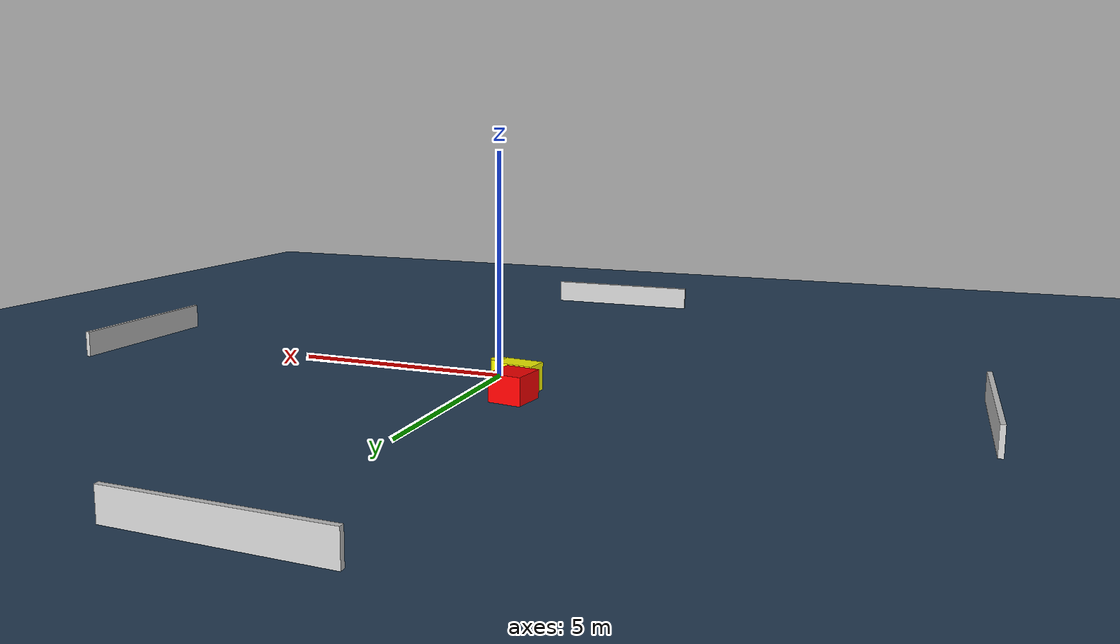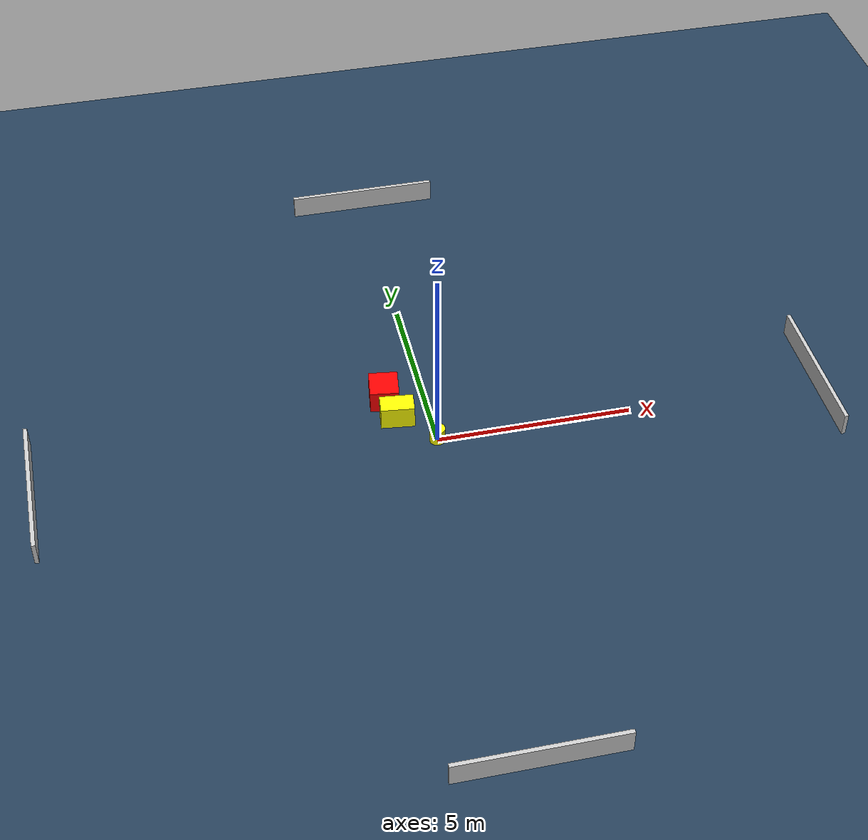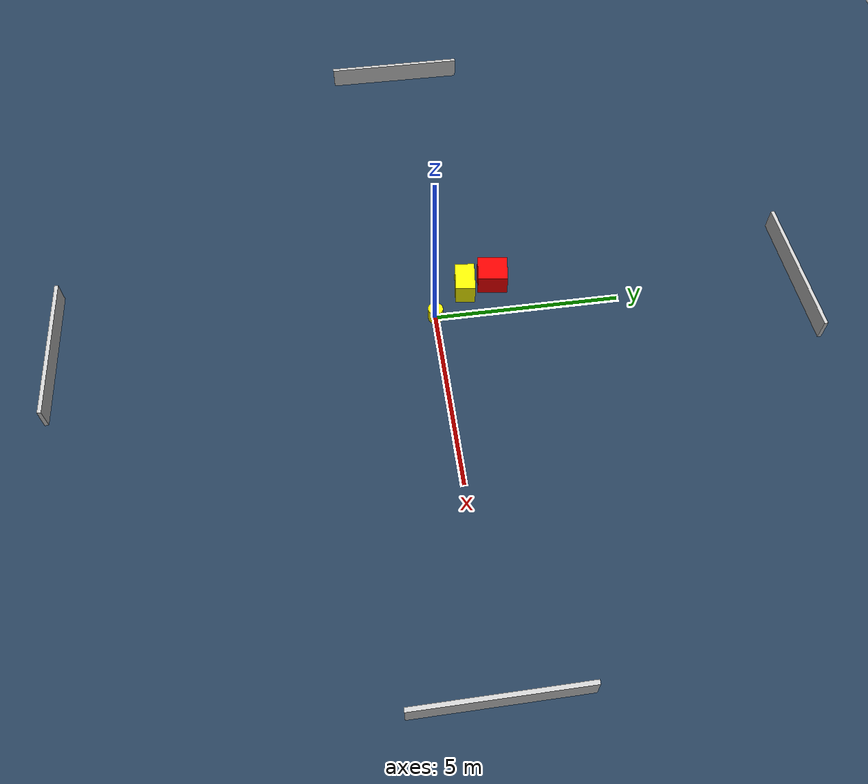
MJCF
<?xml version="1.0" ?>
<mujoco model="generated_environment">
  <option timestep="0.01" integrator="RK4" cone="elliptic"/>
  <default>
    <geom density="1"/>
  </default>
  <asset>
    <texture builtin="gradient" height="3072" name="skybox" rgb1="0.3 0.5 0.7" rgb2="0 0 0" type="skybox" width="512"/>
    <texture builtin="checker" height="300" name="groundplane" rgb1="0.2 0.3 0.4" rgb2="0.1 0.2 0.3" type="2d" width="300"/>
    <material name="groundplane" reflectance="0.2" texrepeat="5 5" texture="groundplane"/>
  </asset>
  <worldbody>
    <light dir="0 0 -1" directional="true" pos="0 0 1.5"/>
    <geom condim="3" friction="0.5 0.005 0.001" material="groundplane" name="floor" pos="0 0 0" size="0 0 0.05" type="plane"/>
    <body name="walls">
      <geom name="wall_1" condim="4" pos="-10.0 0.0 0.3" rgba="0.800000011920929 0.800000011920929 0.800000011920929 1.0" size="0.05 2.0 0.3" type="box"/>
      <geom name="wall_2" condim="4" pos="10.0 0.0 0.3" rgba="0.800000011920929 0.800000011920929 0.800000011920929 1.0" size="0.05 2.0 0.3" type="box"/>
      <geom name="wall_3" condim="4" pos="0.0 -10.0 0.3" rgba="0.800000011920929 0.800000011920929 0.800000011920929 1.0" size="2.0 0.05 0.3" type="box"/>
      <geom name="wall_4" condim="4" pos="0.0 10.0 0.3" rgba="0.800000011920929 0.800000011920929 0.800000011920929 1.0" size="2.0 0.05 0.3" type="box"/>
    </body>
    <body name="robot">
      <joint name="joint_x" type="slide" pos="0 0 0" axis="1 0 0"/>
      <joint name="joint_y" type="slide" pos="0 0 0" axis="0 1 0"/>
      <geom name="robot" type="cylinder" pos="0.0 0.0 0.2" size="0.2 0.2 0.0" mass="5.0" friction="1.0 0.005 0.0001" condim="4" rgba="1.0 1.0 0.0 1.0"/>
    </body>
    <body name="obstacle_1_movable">
      <geom name="obstacle_1_movable" condim="4" pos="-0.8363748841499499 0.9205275621516082 0.3" euler="0 0 263.2779026885751" friction="0.0 0.005 0.001" rgba="1.0 1.0 0.0 1.0" size="0.26553394600700114 0.42845148693845997 0.3" type="box" mass="0.1"/>
      <joint type="free"/>
    </body>
    <body name="obstacle_2_static">
      <geom name="obstacle_2_static" condim="4" pos="-1.0199628054519607 1.7113093928643204 0.3" euler="0 0 352.15383917944496" friction="0.0 0.005 0.001" rgba="1.0 0.0 0.0 1.0" size="0.371079037336019 0.40279582492345556 0.3" type="box"/>
    </body>
  </worldbody>
  <actuator>
    <motor name="actuator_x" joint="joint_x" gear="1" ctrlrange="-1 1"/>
    <motor name="actuator_y" joint="joint_y" gear="1" ctrlrange="-1 1"/>
  </actuator>
</mujoco>
